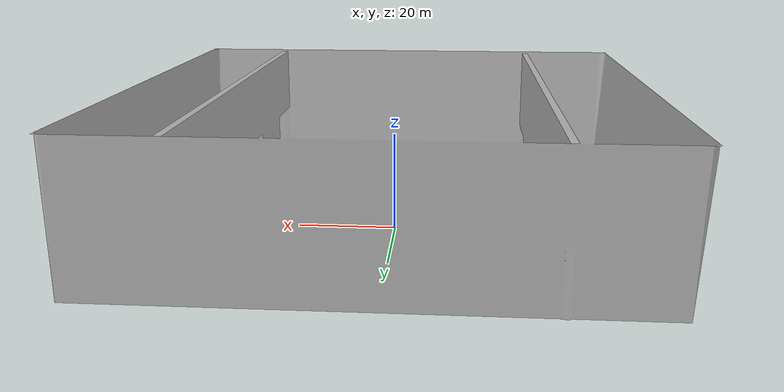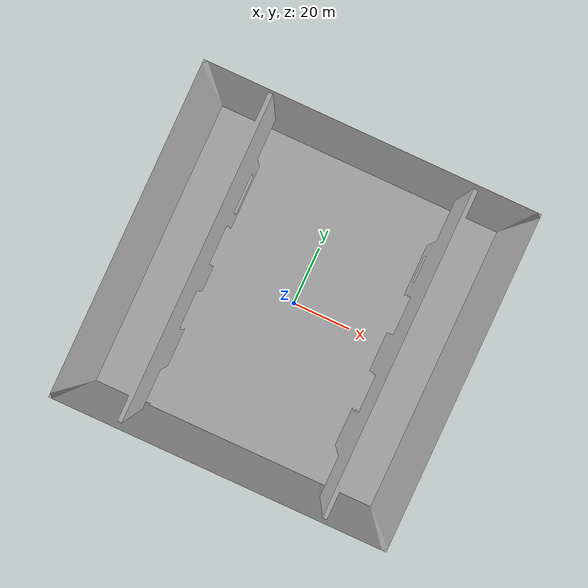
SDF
<?xml version="1.0" ?>
<sdf version="1.6">
  <world name="default">
    <!-- Modelo com o mundo em formato DAE -->
    <model name="mundo_realista">
      <static>true</static>
      <link name="mundo_realista_link">
        <visual name="visual">
          <geometry>
            <mesh>
              <uri>file:///home/ruben/Documents/ProjetoFinal/roboauto/maps/Mundos/mundo_realista.dae</uri>
            </mesh>
          </geometry>
        </visual>
        <collision name="collision">
          <geometry>
            <mesh>
              <uri>file:///home/ruben/Documents/ProjetoFinal/roboauto/maps/Mundos/mundo_realista.dae</uri>
            </mesh>
          </geometry>
        </collision>
      </link>
    </model>
  </world>
</sdf>
